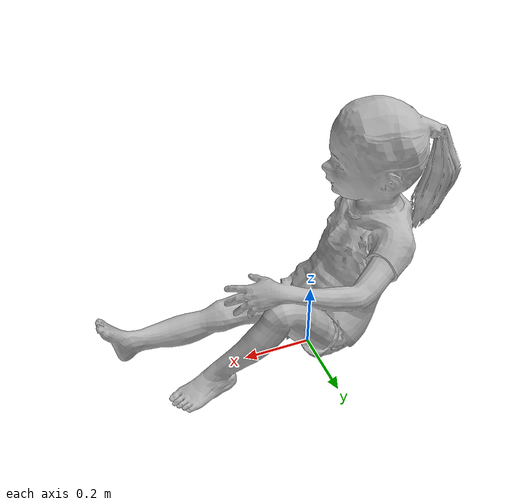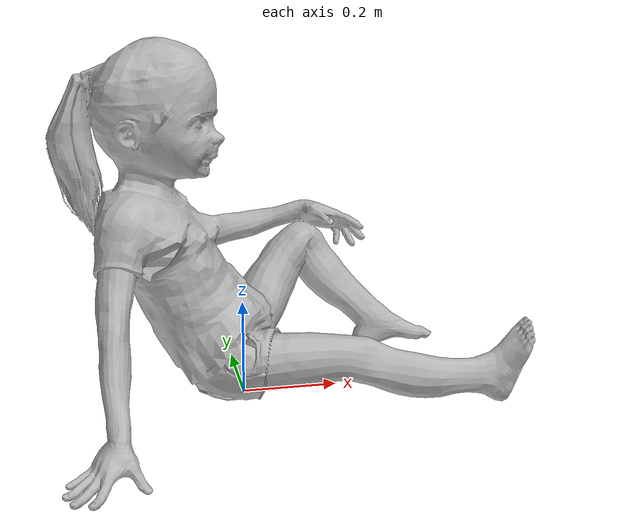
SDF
<?xml version="1.0" ?>
<sdf version="1.5">
  <model name="oliveeye">
    <link name="link">
      <inertial>
        <pose>0 -0.1 0.95 0 0 0</pose>
        <mass>80.0</mass>
        <inertia>
          <ixx>24.88</ixx>
          <ixy>0</ixy>
          <ixz>0</ixz>
          <iyy>25.73</iyy>
          <iyz>0</iyz>
          <izz>2.48</izz>
        </inertia>
      </inertial>

      <collision name="bottom">
        <pose>0 0 0.01 0 0 1.57</pose>
        <geometry>
          <box>
            <size>0.5 0.35 0.02</size>
          </box>
        </geometry>
      </collision>

      <collision name="person">
        <pose>0 0 0.02 0 0 1.57</pose>
        <geometry>
          <mesh>
            <uri>model://oliveeye/meshes/oliveeyev2.dae</uri>
          </mesh>
        </geometry>
      </collision>

      <visual name="visual">
        <pose>0 0 0.02 0 0 1.57</pose>
        <geometry>
          <mesh>
            <uri>model://oliveeye/meshes/oliveeyev2.dae</uri>
            <scale>2.0 2.0 2.0</scale>  <!-- 👈 scale added here -->
          </mesh>
        </geometry>
      </visual>
    </link>
  </model>
</sdf>
